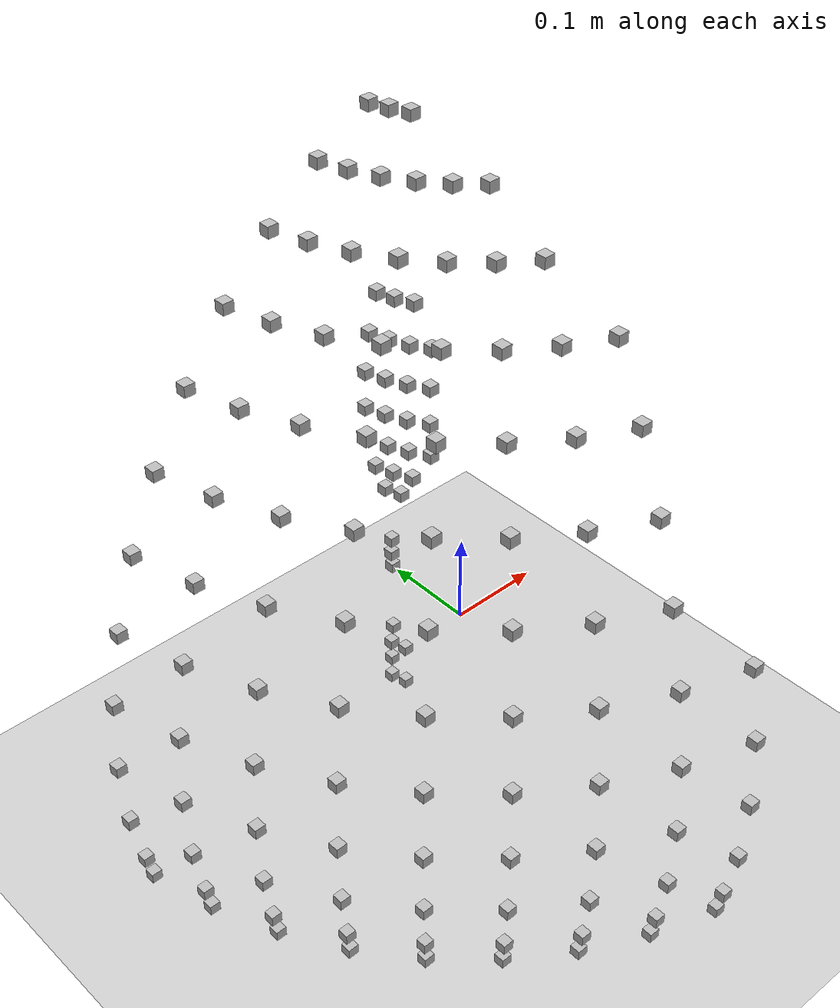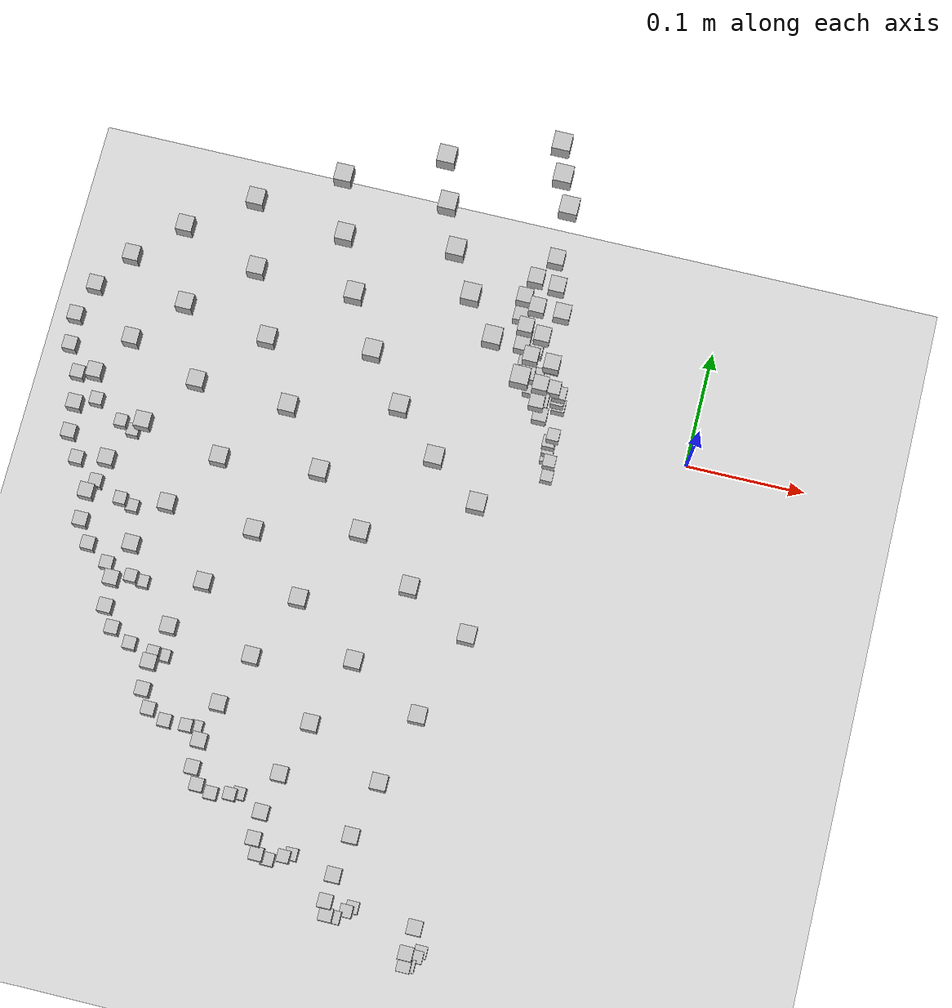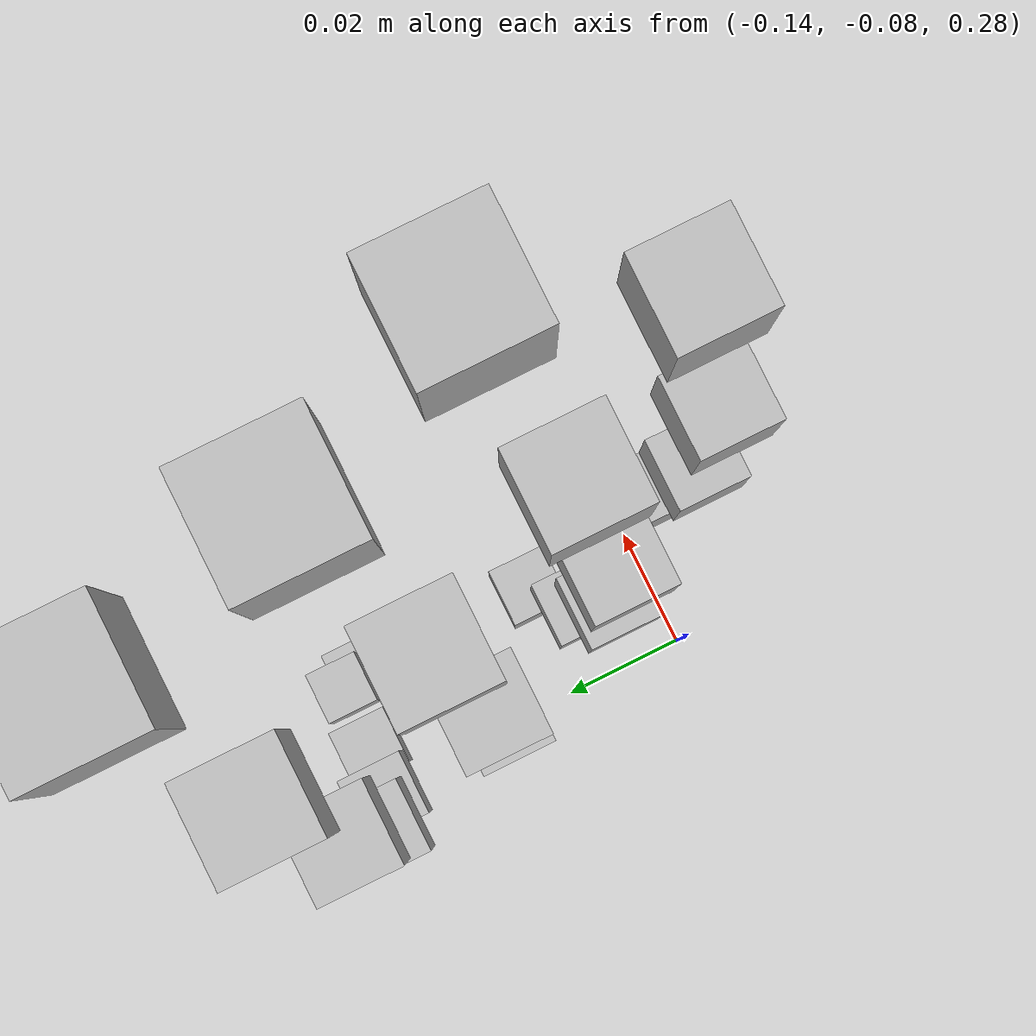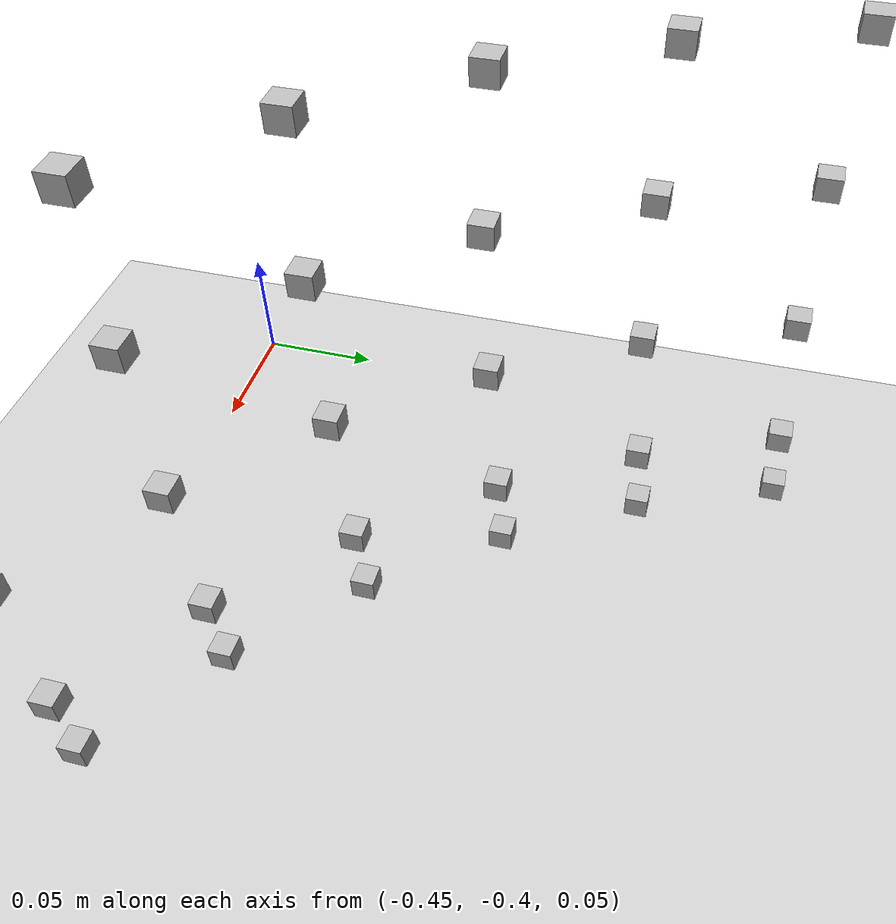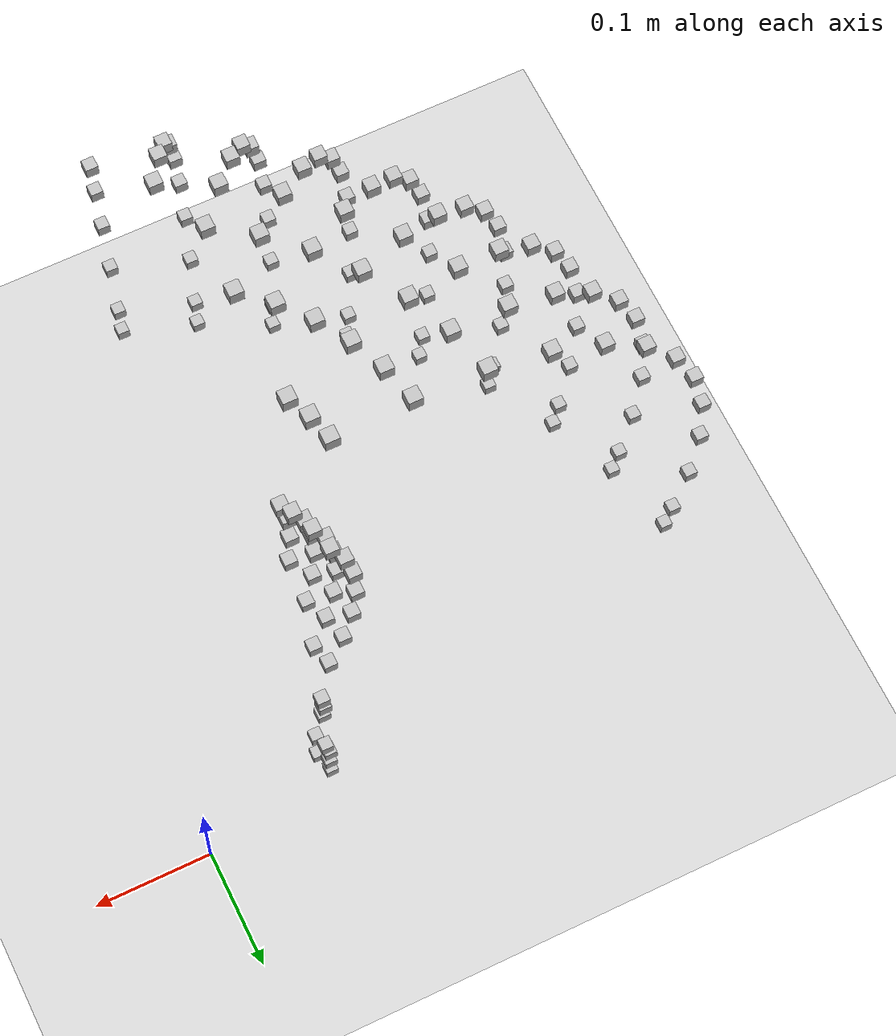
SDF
<sdf version="1.6">
 <world name="default">
  <model name="ground_plane">
   <static>1</static>
   <link name="link">
    <collision name="collision">
     <geometry><plane><normal>0 0 1</normal><size>100 100</size></plane></geometry>
     <surface>
      <contact><collide_bitmask>65535</collide_bitmask></contact>
      <friction><ode><mu>100</mu><mu2>50</mu2></ode></friction>
     </surface>
    </collision>
    <visual name="visual">
     <cast_shadows>0</cast_shadows>
     <geometry><plane><normal>0 0 1</normal><size>100 100</size></plane></geometry>
     <material>
      <script><uri>file://media/materials/scripts/gazebo.material</uri><name>Gazebo/Grey</name></script>
     </material>
    </visual>
   </link>
  </model>
  <model name="box_1685262135_6579912">
   <pose>-0.45127428790450397 -0.08771883558878132 0.031024085780011867 0.0 0.0 0.0</pose>
   <static>1</static>
   <link name="box_1685262135_6579912_link">
    <visual name="visual"><geometry><box><size>0.01 0.01 0.01</size></box></geometry></visual>
   </link>
  </model>
  <model name="box_1685262135_6580403">
   <pose>-0.4346744151944236 -0.14967040394197706 0.031024085780011867 0.0 0.0 0.0</pose>
   <static>1</static>
   <link name="box_1685262135_6580403_link">
    <visual name="visual"><geometry><box><size>0.01 0.01 0.01</size></box></geometry></visual>
   </link>
  </model>
  <model name="box_1685262135_6580632">
   <pose>-0.40961409942740284 -0.20870880813000314 0.031024085780011867 0.0 0.0 0.0</pose>
   <static>1</static>
   <link name="box_1685262135_6580632_link">
    <visual name="visual"><geometry><box><size>0.01 0.01 0.01</size></box></geometry></visual>
   </link>
  </model>
  <model name="box_1685262135_6580842">
   <pose>-0.3765811111441599 -0.26368493277052946 0.031024085780011867 0.0 0.0 0.0</pose>
   <static>1</static>
   <link name="box_1685262135_6580842_link">
    <visual name="visual"><geometry><box><size>0.01 0.01 0.01</size></box></geometry></visual>
   </link>
  </model>
  <model name="box_1685262135_6581023">
   <pose>-0.33621839988716096 -0.31352873013184274 0.031024085780011867 0.0 0.0 0.0</pose>
   <static>1</static>
   <link name="box_1685262135_6581023_link">
    <visual name="visual"><geometry><box><size>0.01 0.01 0.01</size></box></geometry></visual>
   </link>
  </model>
  <model name="box_1685262135_6581194">
   <pose>-0.28931157991911977 -0.3572700473947844 0.031024085780011867 0.0 0.0 0.0</pose>
   <static>1</static>
   <link name="box_1685262135_6581194_link">
    <visual name="visual"><geometry><box><size>0.01 0.01 0.01</size></box></geometry></visual>
   </link>
  </model>
  <model name="box_1685262135_6581366">
   <pose>-0.23677363913499763 -0.39405750957384217 0.031024085780011867 0.0 0.0 0.0</pose>
   <static>1</static>
   <link name="box_1685262135_6581366_link">
    <visual name="visual"><geometry><box><size>0.01 0.01 0.01</size></box></geometry></visual>
   </link>
  </model>
  <model name="box_1685262135_6581564">
   <pose>-0.17962716879113522 -0.42317509056281866 0.031024085780011867 0.0 0.0 0.0</pose>
   <static>1</static>
   <link name="box_1685262135_6581564_link">
    <visual name="visual"><geometry><box><size>0.01 0.01 0.01</size></box></geometry></visual>
   </link>
  </model>
  <model name="box_1685262135_6581733">
   <pose>-0.11898445992962965 -0.4440560497685209 0.031024085780011867 0.0 0.0 0.0</pose>
   <static>1</static>
   <link name="box_1685262135_6581733_link">
    <visual name="visual"><geometry><box><size>0.01 0.01 0.01</size></box></geometry></visual>
   </link>
  </model>
  <model name="box_1685262135_6587758">
   <pose>-0.45670058291203247 -0.08877360048981717 0.05746253559996678 0.0 0.0 0.0</pose>
   <static>1</static>
   <link name="box_1685262135_6587758_link">
    <visual name="visual"><geometry><box><size>0.01 0.01 0.01</size></box></geometry></visual>
   </link>
  </model>
  <model name="box_1685262135_6587918">
   <pose>-0.43990110696988993 -0.1514700982464241 0.05746253559996678 0.0 0.0 0.0</pose>
   <static>1</static>
   <link name="box_1685262135_6587918_link">
    <visual name="visual"><geometry><box><size>0.01 0.01 0.01</size></box></geometry></visual>
   </link>
  </model>
  <model name="box_1685262135_658808">
   <pose>-0.41453945636067124 -0.2112184028353472 0.05746253559996678 0.0 0.0 0.0</pose>
   <static>1</static>
   <link name="box_1685262135_658808_link">
    <visual name="visual"><geometry><box><size>0.01 0.01 0.01</size></box></geometry></visual>
   </link>
  </model>
  <model name="box_1685262135_6588275">
   <pose>-0.38110926676503476 -0.26685558147045274 0.05746253559996678 0.0 0.0 0.0</pose>
   <static>1</static>
   <link name="box_1685262135_6588275_link">
    <visual name="visual"><geometry><box><size>0.01 0.01 0.01</size></box></geometry></visual>
   </link>
  </model>
  <model name="box_1685262135_6588542">
   <pose>-0.3402612187971827 -0.31729871975596063 0.05746253559996678 0.0 0.0 0.0</pose>
   <static>1</static>
   <link name="box_1685262135_6588542_link">
    <visual name="visual"><geometry><box><size>0.01 0.01 0.01</size></box></geometry></visual>
   </link>
  </model>
  <model name="box_1685262135_658877">
   <pose>-0.29279037324684315 -0.36156599938336315 0.05746253559996678 0.0 0.0 0.0</pose>
   <static>1</static>
   <link name="box_1685262135_658877_link">
    <visual name="visual"><geometry><box><size>0.01 0.01 0.01</size></box></geometry></visual>
   </link>
  </model>
  <model name="box_1685262135_658894">
   <pose>-0.23962069612536724 -0.3987958081079969 0.05746253559996678 0.0 0.0 0.0</pose>
   <static>1</static>
   <link name="box_1685262135_658894_link">
    <visual name="visual"><geometry><box><size>0.01 0.01 0.01</size></box></geometry></visual>
   </link>
  </model>
  <model name="box_1685262135_6589131">
   <pose>-0.18178707471831287 -0.4282635100513169 0.05746253559996678 0.0 0.0 0.0</pose>
   <static>1</static>
   <link name="box_1685262135_6589131_link">
    <visual name="visual"><geometry><box><size>0.01 0.01 0.01</size></box></geometry></visual>
   </link>
  </model>
  <model name="box_1685262135_6589296">
   <pose>-0.12041517468159942 -0.4493955499140104 0.05746253559996678 0.0 0.0 0.0</pose>
   <static>1</static>
   <link name="box_1685262135_6589296_link">
    <visual name="visual"><geometry><box><size>0.01 0.01 0.01</size></box></geometry></visual>
   </link>
  </model>
  <model name="box_1685262135_6595292">
   <pose>-0.46630560172722674 -0.09064062701638824 0.11486971929344875 0.0 0.0 0.0</pose>
   <static>1</static>
   <link name="box_1685262135_6595292_link">
    <visual name="visual"><geometry><box><size>0.01 0.01 0.01</size></box></geometry></visual>
   </link>
  </model>
  <model name="box_1685262135_6595452">
   <pose>-0.44915281053096123 -0.1546557152524713 0.11486971929344875 0.0 0.0 0.0</pose>
   <static>1</static>
   <link name="box_1685262135_6595452_link">
    <visual name="visual"><geometry><box><size>0.01 0.01 0.01</size></box></geometry></visual>
   </link>
  </model>
  <model name="box_1685262135_6595607">
   <pose>-0.4232577707814601 -0.21566060590943342 0.11486971929344875 0.0 0.0 0.0</pose>
   <static>1</static>
   <link name="box_1685262135_6595607_link">
    <visual name="visual"><geometry><box><size>0.01 0.01 0.01</size></box></geometry></visual>
   </link>
  </model>
  <model name="box_1685262135_6595767">
   <pose>-0.3891244999722762 -0.272467908182672 0.11486971929344875 0.0 0.0 0.0</pose>
   <static>1</static>
   <link name="box_1685262135_6595767_link">
    <visual name="visual"><geometry><box><size>0.01 0.01 0.01</size></box></geometry></visual>
   </link>
  </model>
  <model name="box_1685262135_6595922">
   <pose>-0.34741736339369045 -0.32397193255078666 0.11486971929344875 0.0 0.0 0.0</pose>
   <static>1</static>
   <link name="box_1685262135_6595922_link">
    <visual name="visual"><geometry><box><size>0.01 0.01 0.01</size></box></geometry></visual>
   </link>
  </model>
  <model name="box_1685262135_6596084">
   <pose>-0.29894814301803996 -0.3691702117644116 0.11486971929344875 0.0 0.0 0.0</pose>
   <static>1</static>
   <link name="box_1685262135_6596084_link">
    <visual name="visual"><geometry><box><size>0.01 0.01 0.01</size></box></geometry></visual>
   </link>
  </model>
  <model name="box_1685262135_659624">
   <pose>-0.24466023708701612 -0.40718301273093416 0.11486971929344875 0.0 0.0 0.0</pose>
   <static>1</static>
   <link name="box_1685262135_659624_link">
    <visual name="visual"><geometry><box><size>0.01 0.01 0.01</size></box></geometry></visual>
   </link>
  </model>
  <model name="box_1685262135_6596403">
   <pose>-0.18561029793798817 -0.4372704595184613 0.11486971929344875 0.0 0.0 0.0</pose>
   <static>1</static>
   <link name="box_1685262135_6596403_link">
    <visual name="visual"><geometry><box><size>0.01 0.01 0.01</size></box></geometry></visual>
   </link>
  </model>
  <model name="box_1685262135_6596584">
   <pose>-0.12294766546818212 -0.45884693419923706 0.11486971929344875 0.0 0.0 0.0</pose>
   <static>1</static>
   <link name="box_1685262135_6596584_link">
    <visual name="visual"><geometry><box><size>0.01 0.01 0.01</size></box></geometry></visual>
   </link>
  </model>
  <model name="box_1685262135_6602507">
   <pose>-0.4687960748402002 -0.0911247259499872 0.18152491402812204 0.0 0.0 0.0</pose>
   <static>1</static>
   <link name="box_1685262135_6602507_link">
    <visual name="visual"><geometry><box><size>0.01 0.01 0.01</size></box></geometry></visual>
   </link>
  </model>
  <model name="box_1685262135_6602666">
   <pose>-0.4515516729810378 -0.15548170983451637 0.18152491402812204 0.0 0.0 0.0</pose>
   <static>1</static>
   <link name="box_1685262135_6602666_link">
    <visual name="visual"><geometry><box><size>0.01 0.01 0.01</size></box></geometry></visual>
   </link>
  </model>
  <model name="box_1685262135_660283">
   <pose>-0.42551833143971474 -0.21681241909494003 0.18152491402812204 0.0 0.0 0.0</pose>
   <static>1</static>
   <link name="box_1685262135_660283_link">
    <visual name="visual"><geometry><box><size>0.01 0.01 0.01</size></box></geometry></visual>
   </link>
  </model>
  <model name="box_1685262135_660299">
   <pose>-0.39120275959684553 -0.2739231212381523 0.18152491402812204 0.0 0.0 0.0</pose>
   <static>1</static>
   <link name="box_1685262135_660299_link">
    <visual name="visual"><geometry><box><size>0.01 0.01 0.01</size></box></geometry></visual>
   </link>
  </model>
  <model name="box_1685262135_6603177">
   <pose>-0.3492728710249675 -0.32570222140939603 0.18152491402812204 0.0 0.0 0.0</pose>
   <static>1</static>
   <link name="box_1685262135_6603177_link">
    <visual name="visual"><geometry><box><size>0.01 0.01 0.01</size></box></geometry></visual>
   </link>
  </model>
  <model name="box_1685262135_6603436">
   <pose>-0.30054478331059065 -0.3711418983216917 0.18152491402812204 0.0 0.0 0.0</pose>
   <static>1</static>
   <link name="box_1685262135_6603436_link">
    <visual name="visual"><geometry><box><size>0.01 0.01 0.01</size></box></geometry></visual>
   </link>
  </model>
  <model name="box_1685262135_6603658">
   <pose>-0.24596693325369728 -0.4093577203508077 0.18152491402812204 0.0 0.0 0.0</pose>
   <static>1</static>
   <link name="box_1685262135_6603658_link">
    <visual name="visual"><geometry><box><size>0.01 0.01 0.01</size></box></geometry></visual>
   </link>
  </model>
  <model name="box_1685262135_6603823">
   <pose>-0.18660161662426025 -0.43960585999080065 0.18152491402812204 0.0 0.0 0.0</pose>
   <static>1</static>
   <link name="box_1685262135_6603823_link">
    <visual name="visual"><geometry><box><size>0.01 0.01 0.01</size></box></geometry></visual>
   </link>
  </model>
  <model name="box_1685262135_6604009">
   <pose>-0.12360431178342512 -0.4612975716103269 0.18152491402812204 0.0 0.0 0.0</pose>
   <static>1</static>
   <link name="box_1685262135_6604009_link">
    <visual name="visual"><geometry><box><size>0.01 0.01 0.01</size></box></geometry></visual>
   </link>
  </model>
  <model name="box_1685262135_660991">
   <pose>-0.4621483757827534 -0.08983254415214617 0.24785452819062248 0.0 0.0 0.0</pose>
   <static>1</static>
   <link name="box_1685262135_660991_link">
    <visual name="visual"><geometry><box><size>0.01 0.01 0.01</size></box></geometry></visual>
   </link>
  </model>
  <model name="box_1685262135_6610081">
   <pose>-0.4451485058216545 -0.15327692256903114 0.24785452819062248 0.0 0.0 0.0</pose>
   <static>1</static>
   <link name="box_1685262135_6610081_link">
    <visual name="visual"><geometry><box><size>0.01 0.01 0.01</size></box></geometry></visual>
   </link>
  </model>
  <model name="box_1685262135_6610246">
   <pose>-0.4194843265436576 -0.21373794003802493 0.24785452819062248 0.0 0.0 0.0</pose>
   <static>1</static>
   <link name="box_1685262135_6610246_link">
    <visual name="visual"><geometry><box><size>0.01 0.01 0.01</size></box></geometry></visual>
   </link>
  </model>
  <model name="box_1685262135_6610403">
   <pose>-0.38565536200583755 -0.2700387916274821 0.24785452819062248 0.0 0.0 0.0</pose>
   <static>1</static>
   <link name="box_1685262135_6610403_link">
    <visual name="visual"><geometry><box><size>0.01 0.01 0.01</size></box></geometry></visual>
   </link>
  </model>
  <model name="box_1685262135_6610565">
   <pose>-0.34432005452304637 -0.321083645302483 0.24785452819062248 0.0 0.0 0.0</pose>
   <static>1</static>
   <link name="box_1685262135_6610565_link">
    <visual name="visual"><geometry><box><size>0.01 0.01 0.01</size></box></geometry></visual>
   </link>
  </model>
  <model name="box_1685262135_6610727">
   <pose>-0.29628294883722095 -0.36587897104890443 0.24785452819062248 0.0 0.0 0.0</pose>
   <static>1</static>
   <link name="box_1685262135_6610727_link">
    <visual name="visual"><geometry><box><size>0.01 0.01 0.01</size></box></geometry></visual>
   </link>
  </model>
  <model name="box_1685262135_6610885">
   <pose>-0.24247903256913836 -0.40355287880501994 0.24785452819062248 0.0 0.0 0.0</pose>
   <static>1</static>
   <link name="box_1685262135_6610885_link">
    <visual name="visual"><geometry><box><size>0.01 0.01 0.01</size></box></geometry></visual>
   </link>
  </model>
  <model name="box_1685262135_6611044">
   <pose>-0.18395553774790877 -0.4333720888097917 0.24785452819062248 0.0 0.0 0.0</pose>
   <static>1</static>
   <link name="box_1685262135_6611044_link">
    <visual name="visual"><geometry><box><size>0.01 0.01 0.01</size></box></geometry></visual>
   </link>
  </model>
  <model name="box_1685262135_66112">
   <pose>-0.12185155763073918 -0.4547562040593256 0.24785452819062248 0.0 0.0 0.0</pose>
   <static>1</static>
   <link name="box_1685262135_66112_link">
    <visual name="visual"><geometry><box><size>0.01 0.01 0.01</size></box></geometry></visual>
   </link>
  </model>
  <model name="box_1685262135_66172">
   <pose>-0.4464875845879522 -0.08678839471835945 0.31265492137086764 0.0 0.0 0.0</pose>
   <static>1</static>
   <link name="box_1685262135_66172_link">
    <visual name="visual"><geometry><box><size>0.01 0.01 0.01</size></box></geometry></visual>
   </link>
  </model>
  <model name="box_1685262135_661737">
   <pose>-0.43006378808669965 -0.14808283771420583 0.31265492137086764 0.0 0.0 0.0</pose>
   <static>1</static>
   <link name="box_1685262135_661737_link">
    <visual name="visual"><geometry><box><size>0.01 0.01 0.01</size></box></geometry></visual>
   </link>
  </model>
  <model name="box_1685262135_6617532">
   <pose>-0.40526928914064786 -0.2064950167156763 0.31265492137086764 0.0 0.0 0.0</pose>
   <static>1</static>
   <link name="box_1685262135_6617532_link">
    <visual name="visual"><geometry><box><size>0.01 0.01 0.01</size></box></geometry></visual>
   </link>
  </model>
  <model name="box_1685262135_6617773">
   <pose>-0.37258668446845716 -0.2608880051013765 0.31265492137086764 0.0 0.0 0.0</pose>
   <static>1</static>
   <link name="box_1685262135_6617773_link">
    <visual name="visual"><geometry><box><size>0.01 0.01 0.01</size></box></geometry></visual>
   </link>
  </model>
  <model name="box_1685262135_6617937">
   <pose>-0.33265210379416005 -0.3102031052234856 0.31265492137086764 0.0 0.0 0.0</pose>
   <static>1</static>
   <link name="box_1685262135_6617937_link">
    <visual name="visual"><geometry><box><size>0.01 0.01 0.01</size></box></geometry></visual>
   </link>
  </model>
  <model name="box_1685262135_6618125">
   <pose>-0.2862428283056693 -0.35348045475322204 0.31265492137086764 0.0 0.0 0.0</pose>
   <static>1</static>
   <link name="box_1685262135_6618125_link">
    <visual name="visual"><geometry><box><size>0.01 0.01 0.01</size></box></geometry></visual>
   </link>
  </model>
  <model name="box_1685262135_6618388">
   <pose>-0.23426216176060008 -0.38987770930924476 0.31265492137086764 0.0 0.0 0.0</pose>
   <static>1</static>
   <link name="box_1685262135_6618388_link">
    <visual name="visual"><geometry><box><size>0.01 0.01 0.01</size></box></geometry></visual>
   </link>
  </model>
  <model name="box_1685262135_6618617">
   <pose>-0.17772184870612012 -0.41868643773288433 0.31265492137086764 0.0 0.0 0.0</pose>
   <static>1</static>
   <link name="box_1685262135_6618617_link">
    <visual name="visual"><geometry><box><size>0.01 0.01 0.01</size></box></geometry></visual>
   </link>
  </model>
  <model name="box_1685262135_6618788">
   <pose>-0.11772238202218237 -0.43934591089481745 0.31265492137086764 0.0 0.0 0.0</pose>
   <static>1</static>
   <link name="box_1685262135_6618788_link">
    <visual name="visual"><geometry><box><size>0.01 0.01 0.01</size></box></geometry></visual>
   </link>
  </model>
  <model name="box_1685262135_6624737">
   <pose>-0.42216206505140697 -0.08205999271091018 0.37450685986133164 0.0 0.0 0.0</pose>
   <static>1</static>
   <link name="box_1685262135_6624737_link">
    <visual name="visual"><geometry><box><size>0.01 0.01 0.01</size></box></geometry></visual>
   </link>
  </model>
  <model name="box_1685262135_662498">
   <pose>-0.40663306920407216 -0.14001499420368962 0.37450685986133164 0.0 0.0 0.0</pose>
   <static>1</static>
   <link name="box_1685262135_662498_link">
    <visual name="visual"><geometry><box><size>0.01 0.01 0.01</size></box></geometry></visual>
   </link>
  </model>
  <model name="box_1685262135_6625156">
   <pose>-0.3831894232029408 -0.1952447630989894 0.37450685986133164 0.0 0.0 0.0</pose>
   <static>1</static>
   <link name="box_1685262135_6625156_link">
    <visual name="visual"><geometry><box><size>0.01 0.01 0.01</size></box></geometry></visual>
   </link>
  </model>
  <model name="box_1685262135_6625323">
   <pose>-0.3522874309506727 -0.24667431476819385 0.37450685986133164 0.0 0.0 0.0</pose>
   <static>1</static>
   <link name="box_1685262135_6625323_link">
    <visual name="visual"><geometry><box><size>0.01 0.01 0.01</size></box></geometry></visual>
   </link>
  </model>
  <model name="box_1685262135_6625483">
   <pose>-0.3145285645759633 -0.29330263148830954 0.37450685986133164 0.0 0.0 0.0</pose>
   <static>1</static>
   <link name="box_1685262135_6625483_link">
    <visual name="visual"><geometry><box><size>0.01 0.01 0.01</size></box></geometry></visual>
   </link>
  </model>
  <model name="box_1685262135_6625643">
   <pose>-0.270647757462722 -0.3342221461133038 0.37450685986133164 0.0 0.0 0.0</pose>
   <static>1</static>
   <link name="box_1685262135_6625643_link">
    <visual name="visual"><geometry><box><size>0.01 0.01 0.01</size></box></geometry></visual>
   </link>
  </model>
  <model name="box_1685262135_6625803">
   <pose>-0.22149909960773018 -0.368636406836259 0.37450685986133164 0.0 0.0 0.0</pose>
   <static>1</static>
   <link name="box_1685262135_6625803_link">
    <visual name="visual"><geometry><box><size>0.01 0.01 0.01</size></box></geometry></visual>
   </link>
  </model>
  <model name="box_1685262135_6625965">
   <pose>-0.16803921373036515 -0.39587557921784416 0.37450685986133164 0.0 0.0 0.0</pose>
   <static>1</static>
   <link name="box_1685262135_6625965_link">
    <visual name="visual"><geometry><box><size>0.01 0.01 0.01</size></box></geometry></visual>
   </link>
  </model>
  <model name="box_1685262135_6632123">
   <pose>-0.11599134566648217 -0.022546433627950786 0.005648136022940203 0.0 0.0 0.0</pose>
   <static>1</static>
   <link name="box_1685262135_6632123_link">
    <visual name="visual"><geometry><box><size>0.01 0.01 0.01</size></box></geometry></visual>
   </link>
  </model>
  <model name="box_1685262135_6632311">
   <pose>-0.111724668780291 -0.038469888546696016 0.005648136022940203 0.0 0.0 0.0</pose>
   <static>1</static>
   <link name="box_1685262135_6632311_link">
    <visual name="visual"><geometry><box><size>0.01 0.01 0.01</size></box></geometry></visual>
   </link>
  </model>
  <model name="box_1685262135_6639612">
   <pose>-0.3895634005205645 -0.07572345422192822 0.4324042100445494 0.0 0.0 0.0</pose>
   <static>1</static>
   <link name="box_1685262135_6639612_link">
    <visual name="visual"><geometry><box><size>0.01 0.01 0.01</size></box></geometry></visual>
   </link>
  </model>
  <model name="box_1685262135_6639771">
   <pose>-0.37523352834642487 -0.12920326524178458 0.4324042100445494 0.0 0.0 0.0</pose>
   <static>1</static>
   <link name="box_1685262135_6639771_link">
    <visual name="visual"><geometry><box><size>0.01 0.01 0.01</size></box></geometry></visual>
   </link>
  </model>
  <model name="box_1685262135_6639955">
   <pose>-0.35360016236483444 -0.18016828167024534 0.4324042100445494 0.0 0.0 0.0</pose>
   <static>1</static>
   <link name="box_1685262135_6639955_link">
    <visual name="visual"><geometry><box><size>0.01 0.01 0.01</size></box></geometry></visual>
   </link>
  </model>
  <model name="box_1685262135_6640122">
   <pose>-0.3250843714370357 -0.22762652743437783 0.4324042100445494 0.0 0.0 0.0</pose>
   <static>1</static>
   <link name="box_1685262135_6640122_link">
    <visual name="visual"><geometry><box><size>0.01 0.01 0.01</size></box></geometry></visual>
   </link>
  </model>
  <model name="box_1685262135_6640284">
   <pose>-0.29024118299720697 -0.27065428176333733 0.4324042100445494 0.0 0.0 0.0</pose>
   <static>1</static>
   <link name="box_1685262135_6640284_link">
    <visual name="visual"><geometry><box><size>0.01 0.01 0.01</size></box></geometry></visual>
   </link>
  </model>
  <model name="box_1685262135_6640444">
   <pose>-0.24974878007478984 -0.308414058362456 0.4324042100445494 0.0 0.0 0.0</pose>
   <static>1</static>
   <link name="box_1685262135_6640444_link">
    <visual name="visual"><geometry><box><size>0.01 0.01 0.01</size></box></geometry></visual>
   </link>
  </model>
  <model name="box_1685262135_6640606">
   <pose>-0.20439530123324381 -0.34017090613134116 0.4324042100445494 0.0 0.0 0.0</pose>
   <static>1</static>
   <link name="box_1685262135_6640606_link">
    <visual name="visual"><geometry><box><size>0.01 0.01 0.01</size></box></geometry></visual>
   </link>
  </model>
  <model name="box_1685262135_6640768">
   <pose>-0.15506350034940167 -0.3653067141510504 0.4324042100445494 0.0 0.0 0.0</pose>
   <static>1</static>
   <link name="box_1685262135_6640768_link">
    <visual name="visual"><geometry><box><size>0.01 0.01 0.01</size></box></geometry></visual>
   </link>
  </model>
  <model name="box_1685262135_664684">
   <pose>-0.11539855591706273 -0.022431206973204963 0.02920890265866033 0.0 0.0 0.0</pose>
   <static>1</static>
   <link name="box_1685262135_664684_link">
    <visual name="visual"><geometry><box><size>0.01 0.01 0.01</size></box></geometry></visual>
   </link>
  </model>
  <model name="box_1685262135_6654327">
   <pose>-0.3493192376084867 -0.06790078139408984 0.4851615351605009 0.0 0.0 0.0</pose>
   <static>1</static>
   <link name="box_1685262135_6654327_link">
    <visual name="visual"><geometry><box><size>0.01 0.01 0.01</size></box></geometry></visual>
   </link>
  </model>
  <model name="box_1685262135_665449">
   <pose>-0.33646972449660684 -0.11585581718014798 0.4851615351605009 0.0 0.0 0.0</pose>
   <static>1</static>
   <link name="box_1685262135_665449_link">
    <visual name="visual"><geometry><box><size>0.01 0.01 0.01</size></box></geometry></visual>
   </link>
  </model>
  <model name="box_1685262135_6654654">
   <pose>-0.3170712109260395 -0.16155585126883315 0.4851615351605009 0.0 0.0 0.0</pose>
   <static>1</static>
   <link name="box_1685262135_6654654_link">
    <visual name="visual"><geometry><box><size>0.01 0.01 0.01</size></box></geometry></visual>
   </link>
  </model>
  <model name="box_1685262135_665484">
   <pose>-0.2915012668979535 -0.20411138447962776 0.4851615351605009 0.0 0.0 0.0</pose>
   <static>1</static>
   <link name="box_1685262135_665484_link">
    <visual name="visual"><geometry><box><size>0.01 0.01 0.01</size></box></geometry></visual>
   </link>
  </model>
  <model name="box_1685262135_6655009">
   <pose>-0.2602575822874756 -0.24269412176478491 0.4851615351605009 0.0 0.0 0.0</pose>
   <static>1</static>
   <link name="box_1685262135_6655009_link">
    <visual name="visual"><geometry><box><size>0.01 0.01 0.01</size></box></geometry></visual>
   </link>
  </model>
  <model name="box_1685262135_6655176">
   <pose>-0.2239482798763839 -0.27655309403026246 0.4851615351605009 0.0 0.0 0.0</pose>
   <static>1</static>
   <link name="box_1685262135_6655176_link">
    <visual name="visual"><geometry><box><size>0.01 0.01 0.01</size></box></geometry></visual>
   </link>
  </model>
  <model name="box_1685262135_6655338">
   <pose>-0.18328007893489126 -0.3050292748949229 0.4851615351605009 0.0 0.0 0.0</pose>
   <static>1</static>
   <link name="box_1685262135_6655338_link">
    <visual name="visual"><geometry><box><size>0.01 0.01 0.01</size></box></geometry></visual>
   </link>
  </model>
  <model name="box_1685262135_6655498">
   <pose>-0.1390445397349306 -0.3275684078894112 0.4851615351605009 0.0 0.0 0.0</pose>
   <static>1</static>
   <link name="box_1685262135_6655498_link">
    <visual name="visual"><geometry><box><size>0.01 0.01 0.01</size></box></geometry></visual>
   </link>
  </model>
  <model name="box_1685262135_6661654">
   <pose>-0.11566535046687501 -0.02248306658027373 0.05028140928145608 0.0 0.0 0.0</pose>
   <static>1</static>
   <link name="box_1685262135_6661654_link">
    <visual name="visual"><geometry><box><size>0.01 0.01 0.01</size></box></geometry></visual>
   </link>
  </model>
  <model name="box_1685262135_666181">
   <pose>-0.11141066513208088 -0.038361768419943584 0.05028140928145608 0.0 0.0 0.0</pose>
   <static>1</static>
   <link name="box_1685262135_666181_link">
    <visual name="visual"><geometry><box><size>0.01 0.01 0.01</size></box></geometry></visual>
   </link>
  </model>
  <model name="box_1685262135_6669106">
   <pose>-0.30224480459869163 -0.058750438553163045 0.5316791207351375 0.0 0.0 0.0</pose>
   <static>1</static>
   <link name="box_1685262135_6669106_link">
    <visual name="visual"><geometry><box><size>0.01 0.01 0.01</size></box></geometry></visual>
   </link>
  </model>
  <model name="box_1685262135_666927">
   <pose>-0.29112689822091214 -0.10024303002883009 0.5316791207351375 0.0 0.0 0.0</pose>
   <static>1</static>
   <link name="box_1685262135_666927_link">
    <visual name="visual"><geometry><box><size>0.01 0.01 0.01</size></box></geometry></visual>
   </link>
  </model>
  <model name="box_1685262135_666943">
   <pose>-0.2743425379212011 -0.13978450494974243 0.5316791207351375 0.0 0.0 0.0</pose>
   <static>1</static>
   <link name="box_1685262135_666943_link">
    <visual name="visual"><geometry><box><size>0.01 0.01 0.01</size></box></geometry></visual>
   </link>
  </model>
  <model name="box_1685262135_6669588">
   <pose>-0.25221841218086555 -0.17660523348432589 0.5316791207351375 0.0 0.0 0.0</pose>
   <static>1</static>
   <link name="box_1685262135_6669588_link">
    <visual name="visual"><geometry><box><size>0.01 0.01 0.01</size></box></geometry></visual>
   </link>
  </model>
  <model name="box_1685262135_666978">
   <pose>-0.22518514194162115 -0.20998854203461245 0.5316791207351375 0.0 0.0 0.0</pose>
   <static>1</static>
   <link name="box_1685262135_666978_link">
    <visual name="visual"><geometry><box><size>0.01 0.01 0.01</size></box></geometry></visual>
   </link>
  </model>
  <model name="box_1685262135_666995">
   <pose>-0.19376889905878544 -0.23928466247262165 0.5316791207351375 0.0 0.0 0.0</pose>
   <static>1</static>
   <link name="box_1685262135_666995_link">
    <visual name="visual"><geometry><box><size>0.01 0.01 0.01</size></box></geometry></visual>
   </link>
  </model>
  <model name="box_1685262135_667011">
   <pose>-0.15858116496462646 -0.2639233791378706 0.5316791207351375 0.0 0.0 0.0</pose>
   <static>1</static>
   <link name="box_1685262135_667011_link">
    <visual name="visual"><geometry><box><size>0.01 0.01 0.01</size></box></geometry></visual>
   </link>
  </model>
  <model name="box_1685262135_6670272">
   <pose>-0.12030682887783246 -0.28342512743659515 0.5316791207351375 0.0 0.0 0.0</pose>
   <static>1</static>
   <link name="box_1685262135_6670272_link">
    <visual name="visual"><geometry><box><size>0.01 0.01 0.01</size></box></geometry></visual>
   </link>
  </model>
  <model name="box_1685262135_6676364">
   <pose>-0.11278755626262096 -0.021923680053216096 0.06994559093984248 0.0 0.0 0.0</pose>
   <static>1</static>
   <link name="box_1685262135_6676364_link">
    <visual name="visual"><geometry><box><size>0.01 0.01 0.01</size></box></geometry></visual>
   </link>
  </model>
  <model name="box_1685262135_6683793">
   <pose>-0.2493116026524517 -0.04846126639520364 0.5710245451470004 0.0 0.0 0.0</pose>
   <static>1</static>
   <link name="box_1685262135_6683793_link">
    <visual name="visual"><geometry><box><size>0.01 0.01 0.01</size></box></geometry></visual>
   </link>
  </model>
  <model name="box_1685262135_6683962">
   <pose>-0.24014081455283678 -0.0826871135284145 0.5710245451470004 0.0 0.0 0.0</pose>
   <static>1</static>
   <link name="box_1685262135_6683962_link">
    <visual name="visual"><geometry><box><size>0.01 0.01 0.01</size></box></geometry></visual>
   </link>
  </model>
  <model name="box_1685262135_668416">
   <pose>-0.22629595865407887 -0.11530355005199223 0.5710245451470004 0.0 0.0 0.0</pose>
   <static>1</static>
   <link name="box_1685262135_668416_link">
    <visual name="visual"><geometry><box><size>0.01 0.01 0.01</size></box></geometry></visual>
   </link>
  </model>
  <model name="box_1685262135_6684325">
   <pose>-0.208046509327957 -0.14567573412965232 0.5710245451470004 0.0 0.0 0.0</pose>
   <static>1</static>
   <link name="box_1685262135_6684325_link">
    <visual name="visual"><geometry><box><size>0.01 0.01 0.01</size></box></geometry></visual>
   </link>
  </model>
  <model name="box_1685262135_6684484">
   <pose>-0.18574767134716338 -0.17321250574617017 0.5710245451470004 0.0 0.0 0.0</pose>
   <static>1</static>
   <link name="box_1685262135_6684484_link">
    <visual name="visual"><geometry><box><size>0.01 0.01 0.01</size></box></geometry></visual>
   </link>
  </model>
  <model name="box_1685262135_6684673">
   <pose>-0.15983346622844172 -0.19737789296464392 0.5710245451470004 0.0 0.0 0.0</pose>
   <static>1</static>
   <link name="box_1685262135_6684673_link">
    <visual name="visual"><geometry><box><size>0.01 0.01 0.01</size></box></geometry></visual>
   </link>
  </model>
  <model name="box_1685262135_6684842">
   <pose>-0.13080828449745666 -0.21770154401058645 0.5710245451470004 0.0 0.0 0.0</pose>
   <static>1</static>
   <link name="box_1685262135_6684842_link">
    <visual name="visual"><geometry><box><size>0.01 0.01 0.01</size></box></geometry></visual>
   </link>
  </model>
  <model name="box_1685262135_6701436">
   <pose>-0.19140107146655333 -0.03720459944095922 0.6025204345093003 0.0 0.0 0.0</pose>
   <static>1</static>
   <link name="box_1685262135_6701436_link">
    <visual name="visual"><geometry><box><size>0.01 0.01 0.01</size></box></geometry></visual>
   </link>
  </model>
  <model name="box_1685262135_6701598">
   <pose>-0.18436048992207563 -0.06348040747978176 0.6025204345093003 0.0 0.0 0.0</pose>
   <static>1</static>
   <link name="box_1685262135_6701598_link">
    <visual name="visual"><geometry><box><size>0.01 0.01 0.01</size></box></geometry></visual>
   </link>
  </model>
  <model name="box_1685262135_6701763">
   <pose>-0.17373154114821382 -0.08852064159490353 0.6025204345093003 0.0 0.0 0.0</pose>
   <static>1</static>
   <link name="box_1685262135_6701763_link">
    <visual name="visual"><geometry><box><size>0.01 0.01 0.01</size></box></geometry></visual>
   </link>
  </model>
  <model name="box_1685262135_670193">
   <pose>-0.15972110554260105 -0.111837922112118 0.6025204345093003 0.0 0.0 0.0</pose>
   <static>1</static>
   <link name="box_1685262135_670193_link">
    <visual name="visual"><geometry><box><size>0.01 0.01 0.01</size></box></geometry></visual>
   </link>
  </model>
  <model name="box_1685262135_6702092">
   <pose>-0.14260188029766638 -0.1329784046891709 0.6025204345093003 0.0 0.0 0.0</pose>
   <static>1</static>
   <link name="box_1685262135_6702092_link">
    <visual name="visual"><geometry><box><size>0.01 0.01 0.01</size></box></geometry></visual>
   </link>
  </model>
  <model name="box_1685262135_6702256">
   <pose>-0.12270707165997222 -0.15153061387964256 0.6025204345093003 0.0 0.0 0.0</pose>
   <static>1</static>
   <link name="box_1685262135_6702256_link">
    <visual name="visual"><geometry><box><size>0.01 0.01 0.01</size></box></geometry></visual>
   </link>
  </model>
  <model name="box_1685262135_6717088">
   <pose>-0.1298223191048749 -0.02523490252058114 0.6254485040649695 0.0 0.0 0.0</pose>
   <static>1</static>
   <link name="box_1685262135_6717088_link">
    <visual name="visual"><geometry><box><size>0.01 0.01 0.01</size></box></geometry></visual>
   </link>
  </model>
  <model name="box_1685262135_6717255">
   <pose>-0.12504687758332209 -0.043057092907590286 0.6254485040649695 0.0 0.0 0.0</pose>
   <static>1</static>
   <link name="box_1685262135_6717255_link">
    <visual name="visual"><geometry><box><size>0.01 0.01 0.01</size></box></geometry></visual>
   </link>
  </model>
  <model name="box_1685262135_6717465">
   <pose>-0.11783754082832494 -0.060041225957870384 0.6254485040649695 0.0 0.0 0.0</pose>
   <static>1</static>
   <link name="box_1685262135_6717465_link">
    <visual name="visual"><geometry><box><size>0.01 0.01 0.01</size></box></geometry></visual>
   </link>
  </model>
  <model name="box_1685262135_6755867">
   <pose>-0.11176965820642695 -0.02172582071438242 0.14825398363050718 0.0 0.0 0.0</pose>
   <static>1</static>
   <link name="box_1685262135_6755867_link">
    <visual name="visual"><geometry><box><size>0.01 0.01 0.01</size></box></geometry></visual>
   </link>
  </model>
  <model name="box_1685262135_6763377">
   <pose>-0.11313902888902434 -0.02199199941098983 0.16428489958480497 0.0 0.0 0.0</pose>
   <static>1</static>
   <link name="box_1685262135_6763377_link">
    <visual name="visual"><geometry><box><size>0.01 0.01 0.01</size></box></geometry></visual>
   </link>
  </model>
  <model name="box_1685262135_6771882">
   <pose>-0.1123161570436777 -0.021832049327310626 0.18035913689155542 0.0 0.0 0.0</pose>
   <static>1</static>
   <link name="box_1685262135_6771882_link">
    <visual name="visual"><geometry><box><size>0.01 0.01 0.01</size></box></geometry></visual>
   </link>
  </model>
  <model name="box_1685262135_6801646">
   <pose>-0.12001538988575812 -0.023328628587277495 0.24636117300793503 0.0 0.0 0.0</pose>
   <static>1</static>
   <link name="box_1685262135_6801646_link">
    <visual name="visual"><geometry><box><size>0.01 0.01 0.01</size></box></geometry></visual>
   </link>
  </model>
  <model name="box_1685262135_6801808">
   <pose>-0.11560069077979923 -0.039804509950844925 0.24636117300793503 0.0 0.0 0.0</pose>
   <static>1</static>
   <link name="box_1685262135_6801808_link">
    <visual name="visual"><geometry><box><size>0.01 0.01 0.01</size></box></geometry></visual>
   </link>
  </model>
  <model name="box_1685262135_6808977">
   <pose>-0.13308865851351 -0.025869814584580347 0.2798396861917631 0.0 0.0 0.0</pose>
   <static>1</static>
   <link name="box_1685262135_6808977_link">
    <visual name="visual"><geometry><box><size>0.01 0.01 0.01</size></box></geometry></visual>
   </link>
  </model>
  <model name="box_1685262135_680914">
   <pose>-0.12819306652058193 -0.04414041263531532 0.2798396861917631 0.0 0.0 0.0</pose>
   <static>1</static>
   <link name="box_1685262135_680914_link">
    <visual name="visual"><geometry><box><size>0.01 0.01 0.01</size></box></geometry></visual>
   </link>
  </model>
  <model name="box_1685262135_6809301">
   <pose>-0.12080234230528265 -0.061551867763079006 0.2798396861917631 0.0 0.0 0.0</pose>
   <static>1</static>
   <link name="box_1685262135_6809301_link">
    <visual name="visual"><geometry><box><size>0.01 0.01 0.01</size></box></geometry></visual>
   </link>
  </model>
  <model name="box_1685262135_6816442">
   <pose>-0.141437951468044 -0.027492752730164036 0.314821790288947 0.0 0.0 0.0</pose>
   <static>1</static>
   <link name="box_1685262135_6816442_link">
    <visual name="visual"><geometry><box><size>0.01 0.01 0.01</size></box></geometry></visual>
   </link>
  </model>
  <model name="box_1685262135_6816604">
   <pose>-0.13623523539563862 -0.046909553449736026 0.314821790288947 0.0 0.0 0.0</pose>
   <static>1</static>
   <link name="box_1685262135_6816604_link">
    <visual name="visual"><geometry><box><size>0.01 0.01 0.01</size></box></geometry></visual>
   </link>
  </model>
  <model name="box_1685262135_6816766">
   <pose>-0.1283808554315406 -0.06541331307023501 0.314821790288947 0.0 0.0 0.0</pose>
   <static>1</static>
   <link name="box_1685262135_6816766_link">
    <visual name="visual"><geometry><box><size>0.01 0.01 0.01</size></box></geometry></visual>
   </link>
  </model>
  <model name="box_1685262135_6816926">
   <pose>-0.11802768814752623 -0.08264387695836274 0.314821790288947 0.0 0.0 0.0</pose>
   <static>1</static>
   <link name="box_1685262135_6816926_link">
    <visual name="visual"><geometry><box><size>0.01 0.01 0.01</size></box></geometry></visual>
   </link>
  </model>
  <model name="box_1685262135_6823864">
   <pose>-0.1449299424378815 -0.028171527014387174 0.3506667056619606 0.0 0.0 0.0</pose>
   <static>1</static>
   <link name="box_1685262135_6823864_link">
    <visual name="visual"><geometry><box><size>0.01 0.01 0.01</size></box></geometry></visual>
   </link>
  </model>
  <model name="box_1685262135_682403">
   <pose>-0.13959877542741533 -0.048067713161081944 0.3506667056619606 0.0 0.0 0.0</pose>
   <static>1</static>
   <link name="box_1685262135_682403_link">
    <visual name="visual"><geometry><box><size>0.01 0.01 0.01</size></box></geometry></visual>
   </link>
  </model>
  <model name="box_1685262135_682419">
   <pose>-0.13155047704450804 -0.06702831594730951 0.3506667056619606 0.0 0.0 0.0</pose>
   <static>1</static>
   <link name="box_1685262135_682419_link">
    <visual name="visual"><geometry><box><size>0.01 0.01 0.01</size></box></geometry></visual>
   </link>
  </model>
  <model name="box_1685262135_6824348">
   <pose>-0.12094169826237917 -0.08468428880720212 0.3506667056619606 0.0 0.0 0.0</pose>
   <static>1</static>
   <link name="box_1685262135_6824348_link">
    <visual name="visual"><geometry><box><size>0.01 0.01 0.01</size></box></geometry></visual>
   </link>
  </model>
  <model name="box_1685262135_683111">
   <pose>-0.1434836599571708 -0.027890398178686163 0.38661397693110494 0.0 0.0 0.0</pose>
   <static>1</static>
   <link name="box_1685262135_683111_link">
    <visual name="visual"><geometry><box><size>0.01 0.01 0.01</size></box></geometry></visual>
   </link>
  </model>
  <model name="box_1685262135_6831267">
   <pose>-0.138205693640221 -0.04758803663418002 0.38661397693110494 0.0 0.0 0.0</pose>
   <static>1</static>
   <link name="box_1685262135_6831267_link">
    <visual name="visual"><geometry><box><size>0.01 0.01 0.01</size></box></geometry></visual>
   </link>
  </model>
  <model name="box_1685262135_683143">
   <pose>-0.13023771070321075 -0.06635942808717886 0.38661397693110494 0.0 0.0 0.0</pose>
   <static>1</static>
   <link name="box_1685262135_683143_link">
    <visual name="visual"><geometry><box><size>0.01 0.01 0.01</size></box></geometry></visual>
   </link>
  </model>
  <model name="box_1685262135_683159">
   <pose>-0.1197347988705627 -0.0838392087551915 0.38661397693110494 0.0 0.0 0.0</pose>
   <static>1</static>
   <link name="box_1685262135_683159_link">
    <visual name="visual"><geometry><box><size>0.01 0.01 0.01</size></box></geometry></visual>
   </link>
  </model>
  <model name="box_1685262135_683842">
   <pose>-0.13712191646279373 -0.026653800511594276 0.42204584917069304 0.0 0.0 0.0</pose>
   <static>1</static>
   <link name="box_1685262135_683842_link">
    <visual name="visual"><geometry><box><size>0.01 0.01 0.01</size></box></geometry></visual>
   </link>
  </model>
  <model name="box_1685262135_6838589">
   <pose>-0.1320779633281841 -0.04547808988095362 0.42204584917069304 0.0 0.0 0.0</pose>
   <static>1</static>
   <link name="box_1685262135_6838589_link">
    <visual name="visual"><geometry><box><size>0.01 0.01 0.01</size></box></geometry></visual>
   </link>
  </model>
  <model name="box_1685262135_6838756">
   <pose>-0.12446326287384796 -0.06341719996134064 0.42204584917069304 0.0 0.0 0.0</pose>
   <static>1</static>
   <link name="box_1685262135_6838756_link">
    <visual name="visual"><geometry><box><size>0.01 0.01 0.01</size></box></geometry></visual>
   </link>
  </model>
  <model name="box_1685262135_6838918">
   <pose>-0.11442602658253546 -0.08012196638047603 0.42204584917069304 0.0 0.0 0.0</pose>
   <static>1</static>
   <link name="box_1685262135_6838918_link">
    <visual name="visual"><geometry><box><size>0.01 0.01 0.01</size></box></geometry></visual>
   </link>
  </model>
  <model name="box_1685262135_6846993">
   <pose>-0.12597485143759182 -0.024487030566017278 0.45627229759588134 0.0 0.0 0.0</pose>
   <static>1</static>
   <link name="box_1685262135_6846993_link">
    <visual name="visual"><geometry><box><size>0.01 0.01 0.01</size></box></geometry></visual>
   </link>
  </model>
  <model name="box_1685262135_6847157">
   <pose>-0.12134093686593374 -0.04178103518537897 0.45627229759588134 0.0 0.0 0.0</pose>
   <static>1</static>
   <link name="box_1685262135_6847157_link">
    <visual name="visual"><geometry><box><size>0.01 0.01 0.01</size></box></geometry></visual>
   </link>
  </model>
  <model name="box_1685262135_684732">
   <pose>-0.11434525898145023 -0.058261819480080315 0.45627229759588134 0.0 0.0 0.0</pose>
   <static>1</static>
   <link name="box_1685262135_684732_link">
    <visual name="visual"><geometry><box><size>0.01 0.01 0.01</size></box></geometry></visual>
   </link>
  </model>
 </world>
</sdf>
